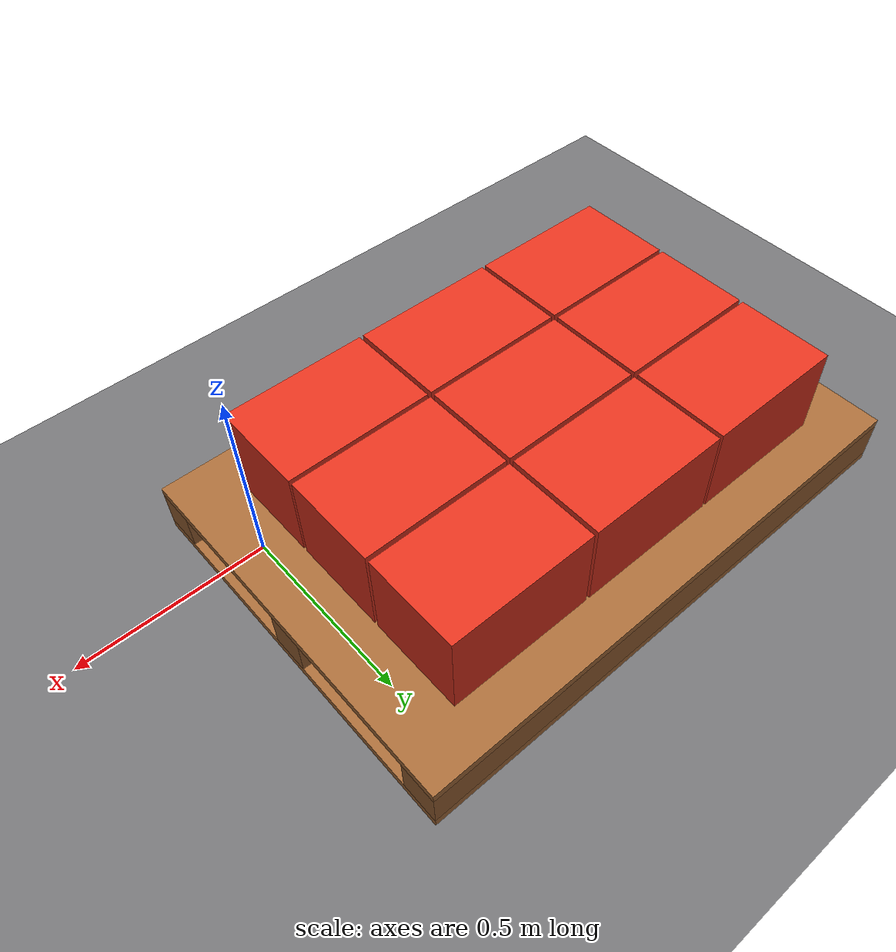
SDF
<?xml version="1.0" ?>
<sdf version="1.9">
  <world name="construction_site">

    <physics name="1ms" type="ignored">
      <max_step_size>0.001</max_step_size>
      <real_time_factor>1.0</real_time_factor>
    </physics>

    <plugin filename="gz-sim-physics-system" name="gz::sim::systems::Physics"/>
    <plugin filename="gz-sim-user-commands-system" name="gz::sim::systems::UserCommands"/>
    <plugin filename="gz-sim-scene-broadcaster-system" name="gz::sim::systems::SceneBroadcaster"/>
    <plugin filename="gz-sim-sensors-system" name="gz::sim::systems::Sensors">
      <render_engine>ogre2</render_engine>
    </plugin>
    <plugin filename="gz-sim-contact-system" name="gz::sim::systems::Contact"/>
    <plugin filename="gz-sim-imu-system" name="gz::sim::systems::Imu"/>

    <light type="directional" name="sun">
      <pose>0 0 10 0 0 0</pose>
      <diffuse>1 1 1 1</diffuse>
      <direction>-0.3 0.2 -1</direction>
      <cast_shadows>true</cast_shadows>
    </light>

    <!-- Concrete floor -->
    <model name="ground_plane">
      <static>true</static>
      <link name="link">
        <collision name="c"><geometry><plane><normal>0 0 1</normal><size>100 100</size></plane></geometry></collision>
        <visual name="v">
          <geometry><plane><normal>0 0 1</normal><size>100 100</size></plane></geometry>
          <material><ambient>0.35 0.35 0.36 1</ambient><diffuse>0.45 0.45 0.46 1</diffuse></material>
        </visual>
      </link>
    </model>

    <!-- EURO PALLET (1200 x 800 x 144 mm)                              -->
    <!-- Simplified as 3 stringers + top deck. Wood-brown. Static.      -->
    <!-- Placed 1.2m in front of robot (X+).                            -->
    <model name="euro_pallet">
      <static>true</static>
      <pose>-0.6 0.3 0.072 0 0 0</pose>
      <link name="pallet">
        <visual name="deck_top">
          <pose>0 0 0.060 0 0 0</pose>
          <geometry><box><size>1.45 1.0 0.024</size></box></geometry>
          <material><ambient>0.55 0.35 0.18 1</ambient><diffuse>0.65 0.42 0.22 1</diffuse></material>
        </visual>
        <collision name="deck_top_c">
          <pose>0 0 0.060 0 0 0</pose>
          <geometry><box><size>1.45 1.0 0.024</size></box></geometry>
        </collision>

        <visual name="deck_bot">
          <pose>0 0 -0.060 0 0 0</pose>
          <geometry><box><size>1.45 1.0 0.024</size></box></geometry>
          <material><ambient>0.55 0.35 0.18 1</ambient><diffuse>0.65 0.42 0.22 1</diffuse></material>
        </visual>

        <visual name="stringer_l">
          <pose>0 -0.45 0 0 0 0</pose>
          <geometry><box><size>1.45 0.10 0.10</size></box></geometry>
          <material><ambient>0.50 0.32 0.16 1</ambient><diffuse>0.60 0.38 0.20 1</diffuse></material>
        </visual>
        <visual name="stringer_m">
          <pose>0 0 0 0 0 0</pose>
          <geometry><box><size>1.45 0.10 0.10</size></box></geometry>
          <material><ambient>0.50 0.32 0.16 1</ambient><diffuse>0.60 0.38 0.20 1</diffuse></material>
        </visual>
        <visual name="stringer_r">
          <pose>0 0.45 0 0 0 0</pose>
          <geometry><box><size>1.45 0.10 0.10</size></box></geometry>
          <material><ambient>0.50 0.32 0.16 1</ambient><diffuse>0.60 0.38 0.20 1</diffuse></material>
        </visual>
      </link>
    </model>

    <!-- BRICKS — 9 stones, 3x3 grid on top of pallet                   -->
    <!-- Brick size: 0.375 x 0.25 x 0.238 m (from brick.stl)            -->
    <!-- Pallet top z = 0.144, brick base z = 0.144                      -->
    <!-- 3 rows along X (x = -0.42, 0, +0.42 -> ~0.045 m gaps), 3 cols along -->
    <!-- Y (y = -0.29, 0, +0.29 -> ~0.04 m gaps) aligned to the gripper's    -->
    <!-- suction pads so one suction pass picks a full row of 3 bricks.      -->

    <!-- DYNAMIC pick bricks: a LÄNGS row along X (end-to-end on their long     -->
    <!-- axis) at y=+0.29, x = 0.98 / 1.40 / 1.82 (spacing 0.42 = brick length  -->
    <!-- + gap), aligned to the gripper's suction pads (which span world X via  -->
    <!-- the längs yaw). r/c/l map to x = 0.98 / 1.40 / 1.82. Resting on the    -->
    <!-- pallet deck (top z=0.144). NOTE: gz DetachableJoint auto-attaches at   -->
    <!-- load, so start-docker.sh runs reset_bricks (detach + set_pose) to drop -->
    <!-- them cleanly onto the pallet after the arm settles. -->

    <model name="row_0_0">
      <pose>-0.6 0.04 0.144 0 0 0</pose>
      <link name="row">
        <inertial><pose>0 0 0.119 0 0 0</pose><mass>6.0</mass>
          <inertia><ixx>0.06</ixx><iyy>0.7</iyy><izz>0.7</izz><ixy>0</ixy><ixz>0</ixz><iyz>0</iyz></inertia></inertial>
        <collision name="c"><pose>0 0 0.119 0 0 0</pose><geometry><box><size>1.155 0.25 0.238</size></box></geometry></collision>
        <visual name="b0.385"><pose>0.385 0 0 0 0 0</pose><geometry><mesh><uri>file:///ws/src/vika_description/meshes/arm/ROD-STL/brick.stl</uri><scale>0.001 0.001 0.001</scale></mesh></geometry><material><ambient>0.55 0.12 0.08 1</ambient><diffuse>0.88 0.20 0.12 1</diffuse></material></visual><visual name="b0.0"><pose>0.0 0 0 0 0 0</pose><geometry><mesh><uri>file:///ws/src/vika_description/meshes/arm/ROD-STL/brick.stl</uri><scale>0.001 0.001 0.001</scale></mesh></geometry><material><ambient>0.55 0.12 0.08 1</ambient><diffuse>0.88 0.20 0.12 1</diffuse></material></visual><visual name="b-0.385"><pose>-0.385 0 0 0 0 0</pose><geometry><mesh><uri>file:///ws/src/vika_description/meshes/arm/ROD-STL/brick.stl</uri><scale>0.001 0.001 0.001</scale></mesh></geometry><material><ambient>0.55 0.12 0.08 1</ambient><diffuse>0.88 0.20 0.12 1</diffuse></material></visual>
      </link>
    </model>
    <!-- STATIC decoration rows (never picked) so the pallet looks full. -->
    <model name="row_1_0">
      <static>true</static>
      <pose>-0.6 0.3 0.144 0 0 0</pose>
      <link name="row">
        <visual name="b0.385"><pose>0.385 0 0 0 0 0</pose><geometry><mesh><uri>file:///ws/src/vika_description/meshes/arm/ROD-STL/brick.stl</uri><scale>0.001 0.001 0.001</scale></mesh></geometry><material><ambient>0.55 0.12 0.08 1</ambient><diffuse>0.88 0.20 0.12 1</diffuse></material></visual><visual name="b0.0"><pose>0.0 0 0 0 0 0</pose><geometry><mesh><uri>file:///ws/src/vika_description/meshes/arm/ROD-STL/brick.stl</uri><scale>0.001 0.001 0.001</scale></mesh></geometry><material><ambient>0.55 0.12 0.08 1</ambient><diffuse>0.88 0.20 0.12 1</diffuse></material></visual><visual name="b-0.385"><pose>-0.385 0 0 0 0 0</pose><geometry><mesh><uri>file:///ws/src/vika_description/meshes/arm/ROD-STL/brick.stl</uri><scale>0.001 0.001 0.001</scale></mesh></geometry><material><ambient>0.55 0.12 0.08 1</ambient><diffuse>0.88 0.20 0.12 1</diffuse></material></visual>
      </link>
    </model>
    <model name="row_2_0">
      <static>true</static>
      <pose>-0.6 0.56 0.144 0 0 0</pose>
      <link name="row">
        <visual name="b0.385"><pose>0.385 0 0 0 0 0</pose><geometry><mesh><uri>file:///ws/src/vika_description/meshes/arm/ROD-STL/brick.stl</uri><scale>0.001 0.001 0.001</scale></mesh></geometry><material><ambient>0.55 0.12 0.08 1</ambient><diffuse>0.88 0.20 0.12 1</diffuse></material></visual><visual name="b0.0"><pose>0.0 0 0 0 0 0</pose><geometry><mesh><uri>file:///ws/src/vika_description/meshes/arm/ROD-STL/brick.stl</uri><scale>0.001 0.001 0.001</scale></mesh></geometry><material><ambient>0.55 0.12 0.08 1</ambient><diffuse>0.88 0.20 0.12 1</diffuse></material></visual><visual name="b-0.385"><pose>-0.385 0 0 0 0 0</pose><geometry><mesh><uri>file:///ws/src/vika_description/meshes/arm/ROD-STL/brick.stl</uri><scale>0.001 0.001 0.001</scale></mesh></geometry><material><ambient>0.55 0.12 0.08 1</ambient><diffuse>0.88 0.20 0.12 1</diffuse></material></visual>
      </link>
    </model>
  </world>
</sdf>
